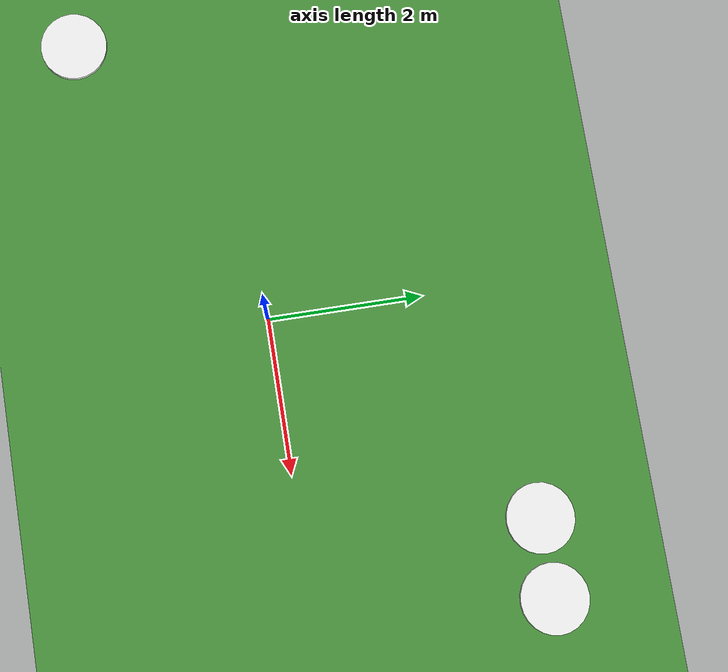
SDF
<?xml version="1.0" ?>
<sdf version="1.5">
	<world name="default">
	<!-- A global light source -->
		<include>
			<uri>model://sun</uri>
		</include>
		<!-- A ground plane -->

		<include>
			<uri>model://grassplane</uri>
		</include>

		<include>
			<name>pot_one</name>
			<uri>model://pot</uri>
			<pose>4 3 0 1.57 0 0</pose>

		</include>

		<include>
			<name>pot_two</name>
			<uri>model://pot</uri>
			<pose>-4 -2 0 1.57 0 0</pose>
		</include>

		<include>
			<name>pot_three</name>
			<uri>model://pot</uri>
			<pose>3 3 0 1.57 0 0</pose>
		</include>

	</world>
</sdf>

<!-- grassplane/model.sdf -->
<sdf version="1.4">
<model name="plane">
  <static>true</static>
    <link name="grassplane">
      <collision name="collision">
        <geometry>
          <plane>
            <normal>0 0 1</normal>
            <size>100 100</size>
          </plane>
        </geometry>
        <surface>
          <friction>
            <ode>
              <mu>100</mu>
              <mu2>50</mu2>
            </ode>
          </friction>
        </surface>
      </collision>
      <visual name="visual">
        <cast_shadows>false</cast_shadows>
        <geometry>
          <plane>
            <normal>0 0 1</normal>
            <size>100 100</size>
          </plane>
        </geometry>
        <material>
          <script>
            <uri>model://grassplane/materials/scripts/grass.material</uri>
            <name>grass</name>
          </script>
        </material>
      </visual>
    </link>
  </model>
</sdf>

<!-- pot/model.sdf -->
<sdf version="1.4">
	<model name="pot">
		<static>true</static>

		<link name="pot">
			<collision name="collision">
				<geometry>
					<mesh>
						<uri>model://pot/meshes/pot.dae</uri>
					</mesh>
				</geometry>
			</collision>

			<visual name="visual">

				<cast_shadows>false</cast_shadows>
				<geometry>
					<mesh>
						<uri>model://pot/meshes/pot.dae</uri>
					</mesh>
				</geometry>

				<material>
					<ambient>1 1 1 1</ambient>
					<diffuse>1 1 1 1</diffuse>
					<specular>1 1 1 1</specular>
					<emissive>1 1 1 1</emissive>
				</material>

			</visual>
		</link>
	</model>
</sdf>
